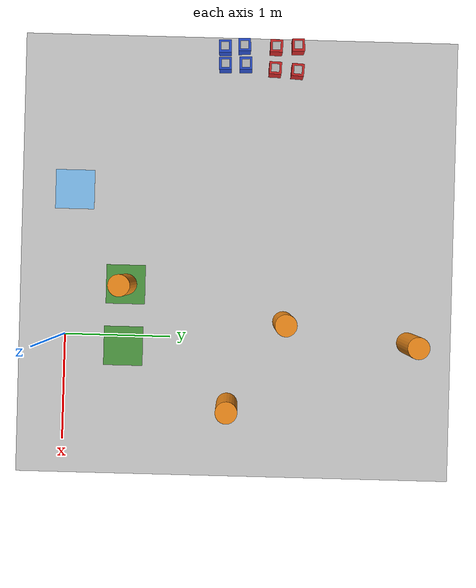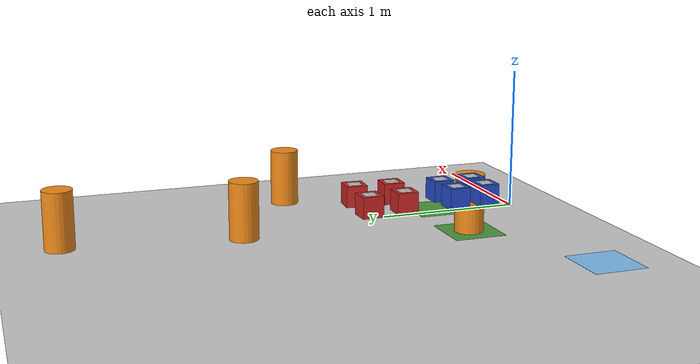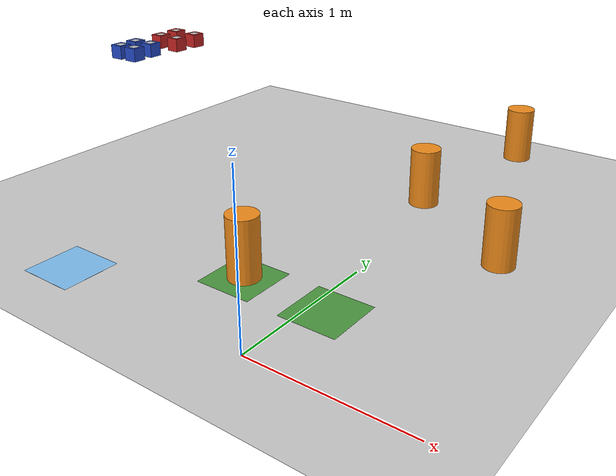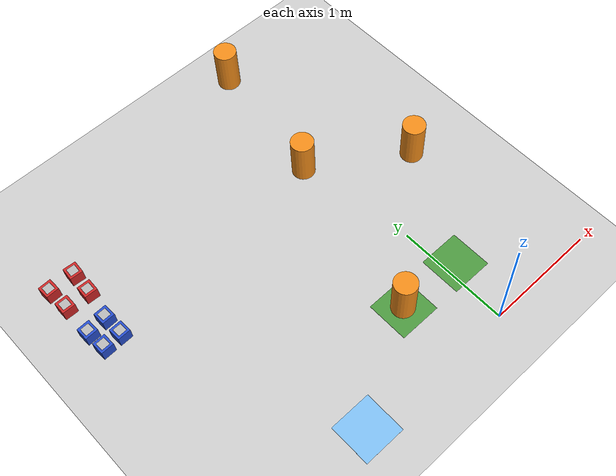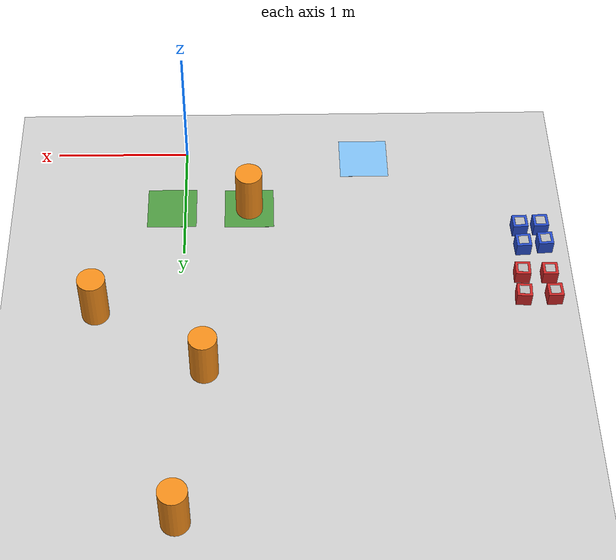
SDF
<sdf version="1.6">
 <world name="default">
  <plugin name="ros_link_attacher_plugin" filename="libgazebo_ros_link_attacher.so"/>
  <light name="sun" type="directional">
   <pose>0 0 10 0 -0 0</pose>
   <diffuse>0.8 0.8 0.8 1</diffuse>
   <specular>0.1 0.1 0.1 1</specular>
   <attenuation>
    <range>1000</range>
    <constant>0.9</constant>
    <linear>0.01</linear>
    <quadratic>0.001</quadratic>
   </attenuation>
   <direction>-0.5 0.5 -1</direction>
  </light>
  <model name="ground_plane">
   <static>1</static>
   <link name="link">
    <collision name="collision">
     <geometry><plane><normal>0 0 1</normal><size>100 100</size></plane></geometry>
     <surface><friction><ode><mu>100</mu><mu2>50</mu2></ode></friction></surface>
    </collision>
    <visual name="visual">
     <cast_shadows>0</cast_shadows>
     <geometry><plane><normal>0 0 1</normal><size>100 100</size></plane></geometry>
     <material>
      <script><uri>file://media/materials/scripts/gazebo.material</uri><name>Gazebo/Grey</name></script>
     </material>
    </visual>
   </link>
  </model>
  <gravity>0 0 -9.8</gravity>
  <magnetic_field>6e-06 2.3e-05 -4.2e-05</magnetic_field>
  <atmosphere type="adiabatic"/>
  <physics name="default_physics" default="0" type="ode">
   <max_step_size>0.001</max_step_size>
   <real_time_factor>1</real_time_factor>
   <real_time_update_rate>1000</real_time_update_rate>
  </physics>
  <scene><ambient>0.4 0.4 0.4 1</ambient><background>0.7 0.7 0.7 1</background><shadows>1</shadows></scene>
  <spherical_coordinates>
   <surface_model>EARTH_WGS84</surface_model>
   <latitude_deg>0</latitude_deg>
   <longitude_deg>0</longitude_deg>
   <elevation>0</elevation>
   <heading_deg>0</heading_deg>
  </spherical_coordinates>
  <model name="cube1">
   <pose>-2.28276 2.06939 0.846457 0 0 -0.065452</pose>
   <link name="cube1_link">
    <inertial>
     <mass>2</mass>
     <inertia>
      <ixx>0.0166667</ixx>
      <ixy>0</ixy>
      <ixz>0</ixz>
      <iyy>0.0166667</iyy>
      <iyz>0</iyz>
      <izz>0.0166667</izz>
     </inertia>
    </inertial>
    <collision name="collision"><geometry><box><size>0.1 0.1 0.1</size></box></geometry></collision>
    <visual name="visual">
     <geometry><box><size>0.1 0.1 0.1</size></box></geometry>
     <material>
      <script><name>Gazebo/Red</name><uri>file://media/materials/scripts/gazebo.material</uri></script>
     </material>
    </visual>
   </link>
   <link name="tag1">
    <pose>0 0 0.05 0 -0 0</pose>
    <collision name="collision"><geometry><box><size>0.065 0.065 0.0001</size></box></geometry></collision>
    <visual name="visual">
     <cast_shadows>0</cast_shadows>
     <geometry><box><size>0.065 0.065 0.0001</size></box></geometry>
     <material>
      <script>
       <uri>model://artag/materials/scripts</uri>
       <uri>model://artag/materials/textures</uri>
       <name>material/artag0</name>
      </script>
     </material>
    </visual>
    <inertial>
     <inertia><ixx>1</ixx><ixy>0</ixy><ixz>0</ixz><iyy>1</iyy><iyz>0</iyz><izz>1</izz></inertia>
     <mass>1</mass>
    </inertial>
   </link>
   <joint name="cube1_tag1" type="fixed"><parent>cube1_link</parent><child>tag1</child></joint>
  </model>
  <model name="cube2">
   <pose>-2.484 2.06894 0.846457 0 -0 0.033409</pose>
   <link name="cube2_link">
    <inertial>
     <mass>2</mass>
     <inertia>
      <ixx>0.0166667</ixx>
      <ixy>0</ixy>
      <ixz>0</ixz>
      <iyy>0.0166667</iyy>
      <iyz>0</iyz>
      <izz>0.0166667</izz>
     </inertia>
    </inertial>
    <collision name="collision"><geometry><box><size>0.1 0.1 0.1</size></box></geometry></collision>
    <visual name="visual">
     <geometry><box><size>0.1 0.1 0.1</size></box></geometry>
     <material>
      <script><name>Gazebo/Red</name><uri>file://media/materials/scripts/gazebo.material</uri></script>
     </material>
    </visual>
   </link>
   <link name="tag2">
    <pose>0 0 0.05 0 -0 0</pose>
    <collision name="collision"><geometry><box><size>0.065 0.065 0.0001</size></box></geometry></collision>
    <visual name="visual">
     <cast_shadows>0</cast_shadows>
     <geometry><box><size>0.065 0.065 0.0001</size></box></geometry>
     <material>
      <script>
       <uri>model://artag/materials/scripts</uri>
       <uri>model://artag/materials/textures</uri>
       <name>material/artag1</name>
      </script>
     </material>
    </visual>
    <inertial>
     <inertia><ixx>1</ixx><ixy>0</ixy><ixz>0</ixz><iyy>1</iyy><iyz>0</iyz><izz>1</izz></inertia>
     <mass>1</mass>
    </inertial>
   </link>
   <joint name="cube2_tag2" type="fixed"><parent>cube2_link</parent><child>tag2</child></joint>
  </model>
  <model name="cube3">
   <pose>-2.29298 1.88673 0.846457 0 0 -0.033795</pose>
   <link name="cube3_link">
    <inertial>
     <mass>2</mass>
     <inertia>
      <ixx>0.0166667</ixx>
      <ixy>0</ixy>
      <ixz>0</ixz>
      <iyy>0.0166667</iyy>
      <iyz>0</iyz>
      <izz>0.0166667</izz>
     </inertia>
    </inertial>
    <collision name="collision"><geometry><box><size>0.1 0.1 0.1</size></box></geometry></collision>
    <visual name="visual">
     <geometry><box><size>0.1 0.1 0.1</size></box></geometry>
     <material>
      <script><name>Gazebo/Red</name><uri>file://media/materials/scripts/gazebo.material</uri></script>
     </material>
    </visual>
   </link>
   <link name="tag3">
    <pose>0 0 0.05 0 -0 0</pose>
    <collision name="collision"><geometry><box><size>0.065 0.065 0.0001</size></box></geometry></collision>
    <visual name="visual">
     <cast_shadows>0</cast_shadows>
     <geometry><box><size>0.065 0.065 0.0001</size></box></geometry>
     <material>
      <script>
       <uri>model://artag/materials/scripts</uri>
       <uri>model://artag/materials/textures</uri>
       <name>material/artag2</name>
      </script>
     </material>
    </visual>
    <inertial>
     <inertia><ixx>1</ixx><ixy>0</ixy><ixz>0</ixz><iyy>1</iyy><iyz>0</iyz><izz>1</izz></inertia>
     <mass>1</mass>
    </inertial>
   </link>
   <joint name="cube3_tag3" type="fixed"><parent>cube3_link</parent><child>tag3</child></joint>
  </model>
  <model name="cube4">
   <pose>-2.47237 1.89207 0.846457 0 0 -0.013298</pose>
   <link name="cube4_link">
    <inertial>
     <mass>2</mass>
     <inertia>
      <ixx>0.0166667</ixx>
      <ixy>0</ixy>
      <ixz>0</ixz>
      <iyy>0.0166667</iyy>
      <iyz>0</iyz>
      <izz>0.0166667</izz>
     </inertia>
    </inertial>
    <collision name="collision"><geometry><box><size>0.1 0.1 0.1</size></box></geometry></collision>
    <visual name="visual">
     <geometry><box><size>0.1 0.1 0.1</size></box></geometry>
     <material>
      <script><name>Gazebo/Red</name><uri>file://media/materials/scripts/gazebo.material</uri></script>
     </material>
    </visual>
   </link>
   <link name="tag4">
    <pose>0 0 0.05 0 -0 0</pose>
    <collision name="collision"><geometry><box><size>0.065 0.065 0.0001</size></box></geometry></collision>
    <visual name="visual">
     <cast_shadows>0</cast_shadows>
     <geometry><box><size>0.065 0.065 0.0001</size></box></geometry>
     <material>
      <script>
       <uri>model://artag/materials/scripts</uri>
       <uri>model://artag/materials/textures</uri>
       <name>material/artag3</name>
      </script>
     </material>
    </visual>
    <inertial>
     <inertia><ixx>1</ixx><ixy>0</ixy><ixz>0</ixz><iyy>1</iyy><iyz>0</iyz><izz>1</izz></inertia>
     <mass>1</mass>
    </inertial>
   </link>
   <joint name="cube4_tag4" type="fixed"><parent>cube4_link</parent><child>tag4</child></joint>
  </model>
  <model name="cylinder_0">
   <pose>-0.164714 2.06831 0.199991 0 -0 1e-06</pose>
   <link name="link">
    <inertial>
     <mass>1</mass>
     <inertia><ixx>0.145833</ixx><ixy>0</ixy><ixz>0</ixz><iyy>0.145833</iyy><iyz>0</iyz><izz>0.125</izz></inertia>
    </inertial>
    <collision name="collision">
     <geometry><cylinder><radius>0.1</radius><length>0.4</length></cylinder></geometry>
    </collision>
    <visual name="visual">
     <geometry><cylinder><radius>0.1</radius><length>0.4</length></cylinder></geometry>
     <material>
      <script><name>Gazebo/Orange</name><uri>file://media/materials/scripts/gazebo.material</uri></script>
     </material>
    </visual>
   </link>
  </model>
  <model name="cylinder_1">
   <pose>-0.483166 0.572641 0.2 0 -0 -0.000141</pose>
   <link name="link">
    <inertial>
     <mass>1</mass>
     <inertia><ixx>0.145833</ixx><ixy>0</ixy><ixz>0</ixz><iyy>0.145833</iyy><iyz>0</iyz><izz>0.125</izz></inertia>
    </inertial>
    <collision name="collision">
     <geometry><cylinder><radius>0.1</radius><length>0.4</length></cylinder></geometry>
    </collision>
    <visual name="visual">
     <geometry><cylinder><radius>0.1</radius><length>0.4</length></cylinder></geometry>
     <material>
      <script><name>Gazebo/Orange</name><uri>file://media/materials/scripts/gazebo.material</uri></script>
     </material>
    </visual>
   </link>
  </model>
  <model name="cylinder_2">
   <pose>0.00604 3.25089 0.199991 0 -0 1e-06</pose>
   <link name="link">
    <inertial>
     <mass>1</mass>
     <inertia><ixx>0.145833</ixx><ixy>0</ixy><ixz>0</ixz><iyy>0.145833</iyy><iyz>0</iyz><izz>0.125</izz></inertia>
    </inertial>
    <collision name="collision">
     <geometry><cylinder><radius>0.1</radius><length>0.4</length></cylinder></geometry>
    </collision>
    <visual name="visual">
     <geometry><cylinder><radius>0.1</radius><length>0.4</length></cylinder></geometry>
     <material>
      <script><name>Gazebo/Orange</name><uri>file://media/materials/scripts/gazebo.material</uri></script>
     </material>
    </visual>
   </link>
  </model>
  <model name="cylinder_3">
   <pose>0.622835 1.55446 0.199991 0 -0 0</pose>
   <link name="link">
    <inertial>
     <mass>1</mass>
     <inertia><ixx>0.145833</ixx><ixy>0</ixy><ixz>0</ixz><iyy>0.145833</iyy><iyz>0</iyz><izz>0.125</izz></inertia>
    </inertial>
    <collision name="collision">
     <geometry><cylinder><radius>0.1</radius><length>0.4</length></cylinder></geometry>
    </collision>
    <visual name="visual">
     <geometry><cylinder><radius>0.1</radius><length>0.4</length></cylinder></geometry>
     <material>
      <script><name>Gazebo/Orange</name><uri>file://media/materials/scripts/gazebo.material</uri></script>
     </material>
    </visual>
   </link>
  </model>
  <model name="blue_cube_1">
   <pose>-2.4743 1.63296 0.846457 0 -0 0.033788</pose>
   <link name="blue_cube_1_link">
    <inertial>
     <mass>2</mass>
     <inertia>
      <ixx>0.0166667</ixx>
      <ixy>0</ixy>
      <ixz>0</ixz>
      <iyy>0.0166667</iyy>
      <iyz>0</iyz>
      <izz>0.0166667</izz>
     </inertia>
    </inertial>
    <collision name="collision"><geometry><box><size>0.1 0.1 0.1</size></box></geometry></collision>
    <visual name="visual">
     <geometry><box><size>0.1 0.1 0.1</size></box></geometry>
     <material>
      <script><name>Gazebo/Blue</name><uri>file://media/materials/scripts/gazebo.material</uri></script>
     </material>
    </visual>
   </link>
   <link name="tag10">
    <pose>0 0 0.05 0 -0 0</pose>
    <collision name="collision"><geometry><box><size>0.065 0.065 0.0001</size></box></geometry></collision>
    <visual name="visual">
     <cast_shadows>0</cast_shadows>
     <geometry><box><size>0.065 0.065 0.0001</size></box></geometry>
     <material>
      <script>
       <uri>model://artag/materials/scripts</uri>
       <uri>model://artag/materials/textures</uri>
       <name>material/artag9</name>
      </script>
     </material>
    </visual>
    <inertial>
     <inertia><ixx>1</ixx><ixy>0</ixy><ixz>0</ixz><iyy>1</iyy><iyz>0</iyz><izz>1</izz></inertia>
     <mass>1</mass>
    </inertial>
   </link>
   <joint name="blue_cube_1_tag10" type="fixed"><parent>blue_cube_1_link</parent><child>tag10</child></joint>
  </model>
  <model name="blue_cube_2">
   <pose>-2.3258 1.64728 0.846457 0 -0 0.03402</pose>
   <link name="blue_cube_2_link">
    <inertial>
     <mass>2</mass>
     <inertia>
      <ixx>0.0166667</ixx>
      <ixy>0</ixy>
      <ixz>0</ixz>
      <iyy>0.0166667</iyy>
      <iyz>0</iyz>
      <izz>0.0166667</izz>
     </inertia>
    </inertial>
    <collision name="collision"><geometry><box><size>0.1 0.1 0.1</size></box></geometry></collision>
    <visual name="visual">
     <geometry><box><size>0.1 0.1 0.1</size></box></geometry>
     <material>
      <script><name>Gazebo/Blue</name><uri>file://media/materials/scripts/gazebo.material</uri></script>
     </material>
    </visual>
   </link>
   <link name="tag11">
    <pose>0 0 0.05 0 -0 0</pose>
    <collision name="collision"><geometry><box><size>0.065 0.065 0.0001</size></box></geometry></collision>
    <visual name="visual">
     <cast_shadows>0</cast_shadows>
     <geometry><box><size>0.065 0.065 0.0001</size></box></geometry>
     <material>
      <script>
       <uri>model://artag/materials/scripts</uri>
       <uri>model://artag/materials/textures</uri>
       <name>material/artag10</name>
      </script>
     </material>
    </visual>
    <inertial>
     <inertia><ixx>1</ixx><ixy>0</ixy><ixz>0</ixz><iyy>1</iyy><iyz>0</iyz><izz>1</izz></inertia>
     <mass>1</mass>
    </inertial>
   </link>
   <joint name="blue_cube_2_tag11" type="fixed"><parent>blue_cube_2_link</parent><child>tag11</child></joint>
  </model>
  <model name="blue_cube_3">
   <pose>-2.45988 1.47655 0.846457 0 -0 0.034172</pose>
   <link name="blue_cube_3_link">
    <inertial>
     <mass>2</mass>
     <inertia>
      <ixx>0.0166667</ixx>
      <ixy>0</ixy>
      <ixz>0</ixz>
      <iyy>0.0166667</iyy>
      <iyz>0</iyz>
      <izz>0.0166667</izz>
     </inertia>
    </inertial>
    <collision name="collision"><geometry><box><size>0.1 0.1 0.1</size></box></geometry></collision>
    <visual name="visual">
     <geometry><box><size>0.1 0.1 0.1</size></box></geometry>
     <material>
      <script><name>Gazebo/Blue</name><uri>file://media/materials/scripts/gazebo.material</uri></script>
     </material>
    </visual>
   </link>
   <link name="tag12">
    <pose>0 0 0.05 0 -0 0</pose>
    <collision name="collision"><geometry><box><size>0.065 0.065 0.0001</size></box></geometry></collision>
    <visual name="visual">
     <cast_shadows>0</cast_shadows>
     <geometry><box><size>0.065 0.065 0.0001</size></box></geometry>
     <material>
      <script>
       <uri>model://artag/materials/scripts</uri>
       <uri>model://artag/materials/textures</uri>
       <name>material/artag11</name>
      </script>
     </material>
    </visual>
    <inertial>
     <inertia><ixx>1</ixx><ixy>0</ixy><ixz>0</ixz><iyy>1</iyy><iyz>0</iyz><izz>1</izz></inertia>
     <mass>1</mass>
    </inertial>
   </link>
   <joint name="blue_cube_3_tag12" type="fixed"><parent>blue_cube_3_link</parent><child>tag12</child></joint>
  </model>
  <model name="blue_cube_4">
   <pose>-2.31989 1.48186 0.846457 0 -0 0.034306</pose>
   <link name="blue_cube_4_link">
    <inertial>
     <mass>2</mass>
     <inertia>
      <ixx>0.0166667</ixx>
      <ixy>0</ixy>
      <ixz>0</ixz>
      <iyy>0.0166667</iyy>
      <iyz>0</iyz>
      <izz>0.0166667</izz>
     </inertia>
    </inertial>
    <collision name="collision"><geometry><box><size>0.1 0.1 0.1</size></box></geometry></collision>
    <visual name="visual">
     <geometry><box><size>0.1 0.1 0.1</size></box></geometry>
     <material>
      <script><name>Gazebo/Blue</name><uri>file://media/materials/scripts/gazebo.material</uri></script>
     </material>
    </visual>
   </link>
   <link name="tag13">
    <pose>0 0 0.05 0 -0 0</pose>
    <collision name="collision"><geometry><box><size>0.065 0.065 0.0001</size></box></geometry></collision>
    <visual name="visual">
     <cast_shadows>0</cast_shadows>
     <geometry><box><size>0.065 0.065 0.0001</size></box></geometry>
     <material>
      <script>
       <uri>model://artag/materials/scripts</uri>
       <uri>model://artag/materials/textures</uri>
       <name>material/artag12</name>
      </script>
     </material>
    </visual>
    <inertial>
     <inertia><ixx>1</ixx><ixy>0</ixy><ixz>0</ixz><iyy>1</iyy><iyz>0</iyz><izz>1</izz></inertia>
     <mass>1</mass>
    </inertial>
   </link>
   <joint name="blue_cube_4_tag13" type="fixed"><parent>blue_cube_4_link</parent><child>tag13</child></joint>
  </model>
  <audio><device>default</device></audio>
  <model name="loading_station_0">
   <link name="loading_station_0">
    <inertial>
     <mass>1</mass>
     <inertia>
      <ixx>0.166667</ixx>
      <ixy>0</ixy>
      <ixz>0</ixz>
      <iyy>0.166667</iyy>
      <iyz>0</iyz>
      <izz>0.166667</izz>
     </inertia>
    </inertial>
    <visual name="visual">
     <geometry><box><size>0.37 0.37 0.0005</size></box></geometry>
     <material>
      <script><name>Gazebo/Grass</name><uri>file://media/materials/scripts/gazebo.material</uri></script>
     </material>
    </visual>
    <collision name="collision">
     <geometry><box><size>0.37 0.37 0.0005</size></box></geometry>
     <surface>
      <friction>
       <ode><mu>1</mu><mu2>1</mu2><fdir1>0 0 0</fdir1><slip1>0</slip1><slip2>0</slip2></ode>
       <torsional>
        <coefficient>1</coefficient>
        <patch_radius>0</patch_radius>
        <surface_radius>0</surface_radius>
        <use_patch_radius>1</use_patch_radius>
        <ode><slip>0</slip></ode>
       </torsional>
      </friction>
      <bounce><restitution_coefficient>0</restitution_coefficient><threshold>1e+06</threshold></bounce>
      <contact>
       <collide_without_contact>0</collide_without_contact>
       <collide_without_contact_bitmask>1</collide_without_contact_bitmask>
       <collide_bitmask>1</collide_bitmask>
       <ode>
        <soft_cfm>0</soft_cfm>
        <soft_erp>0.2</soft_erp>
        <kp>1e+13</kp>
        <kd>1</kd>
        <max_vel>0.01</max_vel>
        <min_depth>0</min_depth>
       </ode>
       <bullet>
        <split_impulse>1</split_impulse>
        <split_impulse_penetration_threshold>-0.01</split_impulse_penetration_threshold>
        <soft_cfm>0</soft_cfm>
        <soft_erp>0.2</soft_erp>
        <kp>1e+13</kp>
        <kd>1</kd>
       </bullet>
      </contact>
     </surface>
    </collision>
   </link>
   <static>0</static>
   <pose>0.101878 0.557094 0.00025 0 -0 0</pose>
  </model>
  <model name="loading_station_1">
   <link name="loading_station_1">
    <inertial>
     <mass>1</mass>
     <inertia>
      <ixx>0.166667</ixx>
      <ixy>0</ixy>
      <ixz>0</ixz>
      <iyy>0.166667</iyy>
      <iyz>0</iyz>
      <izz>0.166667</izz>
     </inertia>
    </inertial>
    <visual name="visual">
     <geometry><box><size>0.37 0.37 0.0005</size></box></geometry>
     <material>
      <script><name>Gazebo/Grass</name><uri>file://media/materials/scripts/gazebo.material</uri></script>
     </material>
    </visual>
    <collision name="collision">
     <geometry><box><size>0.37 0.37 0.0005</size></box></geometry>
     <surface>
      <friction>
       <ode><mu>1</mu><mu2>1</mu2><fdir1>0 0 0</fdir1><slip1>0</slip1><slip2>0</slip2></ode>
       <torsional>
        <coefficient>1</coefficient>
        <patch_radius>0</patch_radius>
        <surface_radius>0</surface_radius>
        <use_patch_radius>1</use_patch_radius>
        <ode><slip>0</slip></ode>
       </torsional>
      </friction>
      <bounce><restitution_coefficient>0</restitution_coefficient><threshold>1e+06</threshold></bounce>
      <contact>
       <collide_without_contact>0</collide_without_contact>
       <collide_without_contact_bitmask>1</collide_without_contact_bitmask>
       <collide_bitmask>1</collide_bitmask>
       <ode>
        <soft_cfm>0</soft_cfm>
        <soft_erp>0.2</soft_erp>
        <kp>1e+13</kp>
        <kd>1</kd>
        <max_vel>0.01</max_vel>
        <min_depth>0</min_depth>
       </ode>
       <bullet>
        <split_impulse>1</split_impulse>
        <split_impulse_penetration_threshold>-0.01</split_impulse_penetration_threshold>
        <soft_cfm>0</soft_cfm>
        <soft_erp>0.2</soft_erp>
        <kp>1e+13</kp>
        <kd>1</kd>
       </bullet>
      </contact>
     </surface>
    </collision>
   </link>
   <static>0</static>
   <pose>-0.482654 0.565774 -0.00027 1.2e-05 2.2e-05 -3.1e-05</pose>
  </model>
  <model name="unloading_station_0">
   <link name="unloading_station_0">
    <inertial>
     <mass>1</mass>
     <inertia>
      <ixx>0.166667</ixx>
      <ixy>0</ixy>
      <ixz>0</ixz>
      <iyy>0.166667</iyy>
      <iyz>0</iyz>
      <izz>0.166667</izz>
     </inertia>
    </inertial>
    <visual name="visual">
     <geometry><box><size>0.37 0.37 0.0005</size></box></geometry>
     <material>
      <script><name>Gazebo/SkyBlue</name><uri>file://media/materials/scripts/gazebo.material</uri></script>
     </material>
    </visual>
    <collision name="collision">
     <geometry><box><size>0.37 0.37 0.0005</size></box></geometry>
     <surface>
      <friction>
       <ode><mu>1</mu><mu2>1</mu2><fdir1>0 0 0</fdir1><slip1>0</slip1><slip2>0</slip2></ode>
       <torsional>
        <coefficient>1</coefficient>
        <patch_radius>0</patch_radius>
        <surface_radius>0</surface_radius>
        <use_patch_radius>1</use_patch_radius>
        <ode><slip>0</slip></ode>
       </torsional>
      </friction>
      <bounce><restitution_coefficient>0</restitution_coefficient><threshold>1e+06</threshold></bounce>
      <contact>
       <collide_without_contact>0</collide_without_contact>
       <collide_without_contact_bitmask>1</collide_without_contact_bitmask>
       <collide_bitmask>1</collide_bitmask>
       <ode>
        <soft_cfm>0</soft_cfm>
        <soft_erp>0.2</soft_erp>
        <kp>1e+13</kp>
        <kd>1</kd>
        <max_vel>0.01</max_vel>
        <min_depth>0</min_depth>
       </ode>
       <bullet>
        <split_impulse>1</split_impulse>
        <split_impulse_penetration_threshold>-0.01</split_impulse_penetration_threshold>
        <soft_cfm>0</soft_cfm>
        <soft_erp>0.2</soft_erp>
        <kp>1e+13</kp>
        <kd>1</kd>
       </bullet>
      </contact>
     </surface>
    </collision>
   </link>
   <static>0</static>
   <pose>-1.37441 0.062528 0.00025 0 -0 0</pose>
  </model>
 </world>
</sdf>
